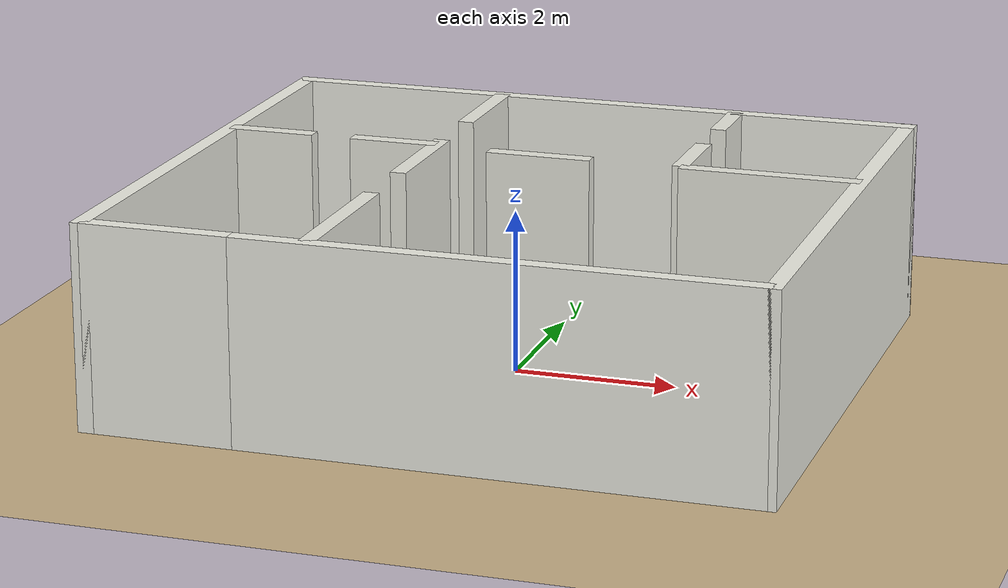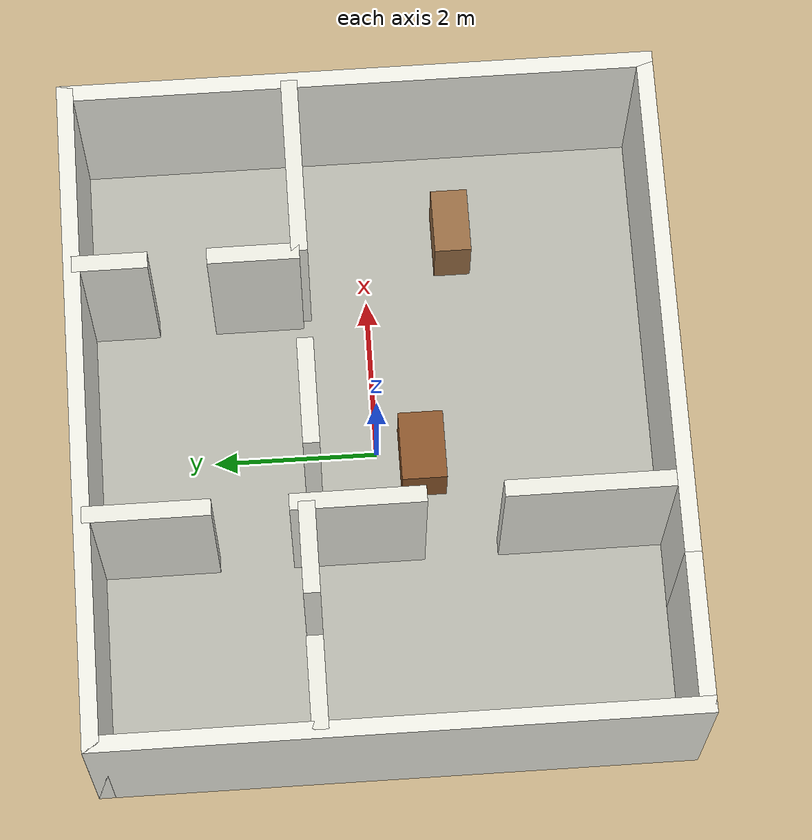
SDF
<?xml version="1.0"?>
<sdf version="1.8">
  <world name="reference_house">
    <physics name="1ms" type="ignored">
      <max_step_size>0.001</max_step_size>
      <real_time_factor>1.0</real_time_factor>
    </physics>
    <plugin filename="ignition-gazebo-physics-system" name="ignition::gazebo::systems::Physics"/>
    <plugin filename="ignition-gazebo-user-commands-system" name="ignition::gazebo::systems::UserCommands"/>
    <plugin filename="ignition-gazebo-scene-broadcaster-system" name="ignition::gazebo::systems::SceneBroadcaster"/>
    <plugin filename="ignition-gazebo-sensors-system" name="ignition::gazebo::systems::Sensors">
      <render_engine>ogre2</render_engine>
    </plugin>
    <gravity>0 0 -9.8</gravity>

    <light type="directional" name="sun">
      <pose>-3 -4 10 0 0 0</pose>
      <direction>0.35 0.25 -0.9</direction>
      <diffuse>0.9 0.9 0.85 1</diffuse>
      <specular>0.2 0.2 0.2 1</specular>
    </light>

    <model name="site_ground">
      <static>true</static>
      <link name="ground">
        <collision name="collision">
          <geometry><plane><normal>0 0 1</normal><size>16 15</size></plane></geometry>
        </collision>
        <visual name="visual">
          <geometry><plane><normal>0 0 1</normal><size>16 15</size></plane></geometry>
          <material><ambient>0.72 0.63 0.48 1</ambient><diffuse>0.78 0.69 0.53 1</diffuse></material>
        </visual>
      </link>
    </model>

    <model name="house_floor">
      <static>true</static>
      <pose>0 0 0.025 0 0 0</pose>
      <link name="floor">
        <collision name="collision"><geometry><box><size>8.0 7.0 0.05</size></box></geometry></collision>
        <visual name="visual">
          <geometry><box><size>8.0 7.0 0.05</size></box></geometry>
          <material><ambient>0.66 0.66 0.62 1</ambient><diffuse>0.72 0.72 0.68 1</diffuse></material>
        </visual>
      </link>
    </model>

    <!-- All wall poses are relative to the house center. The south wall has a 1.2 m front door. -->
    <model name="house_walls">
      <static>true</static>
      <link name="south_left">
        <pose>-3.10 -3.50 1.25 0 0 0</pose>
        <collision name="collision"><geometry><box><size>1.80 0.20 2.50</size></box></geometry></collision>
        <visual name="visual"><geometry><box><size>1.80 0.20 2.50</size></box></geometry><material><ambient>0.88 0.88 0.84 1</ambient><diffuse>0.94 0.94 0.90 1</diffuse></material></visual>
      </link>
      <link name="south_right">
        <pose>0.90 -3.50 1.25 0 0 0</pose>
        <collision name="collision"><geometry><box><size>6.20 0.20 2.50</size></box></geometry></collision>
        <visual name="visual"><geometry><box><size>6.20 0.20 2.50</size></box></geometry><material><ambient>0.88 0.88 0.84 1</ambient><diffuse>0.94 0.94 0.90 1</diffuse></material></visual>
      </link>
      <link name="north">
        <pose>0 3.50 1.25 0 0 0</pose>
        <collision name="collision"><geometry><box><size>8.20 0.20 2.50</size></box></geometry></collision>
        <visual name="visual"><geometry><box><size>8.20 0.20 2.50</size></box></geometry><material><ambient>0.88 0.88 0.84 1</ambient><diffuse>0.94 0.94 0.90 1</diffuse></material></visual>
      </link>
      <link name="west">
        <pose>-4.00 0 1.25 0 0 0</pose>
        <collision name="collision"><geometry><box><size>0.20 7.20 2.50</size></box></geometry></collision>
        <visual name="visual"><geometry><box><size>0.20 7.20 2.50</size></box></geometry><material><ambient>0.88 0.88 0.84 1</ambient><diffuse>0.94 0.94 0.90 1</diffuse></material></visual>
      </link>
      <link name="east">
        <pose>4.00 0 1.25 0 0 0</pose>
        <collision name="collision"><geometry><box><size>0.20 7.20 2.50</size></box></geometry></collision>
        <visual name="visual"><geometry><box><size>0.20 7.20 2.50</size></box></geometry><material><ambient>0.88 0.88 0.84 1</ambient><diffuse>0.94 0.94 0.90 1</diffuse></material></visual>
      </link>

      <!-- Left rooms and the central hall. Gaps between segments are doors. -->
      <link name="hall_left_south">
        <pose>-1.30 -2.45 1.25 0 0 0</pose>
        <collision name="collision"><geometry><box><size>0.20 2.10 2.50</size></box></geometry></collision>
        <visual name="visual"><geometry><box><size>0.20 2.10 2.50</size></box></geometry><material><ambient>0.86 0.86 0.82 1</ambient><diffuse>0.92 0.92 0.88 1</diffuse></material></visual>
      </link>
      <link name="hall_left_middle">
        <pose>-1.30 0.30 1.25 0 0 0</pose>
        <collision name="collision"><geometry><box><size>0.20 1.60 2.50</size></box></geometry></collision>
        <visual name="visual"><geometry><box><size>0.20 1.60 2.50</size></box></geometry><material><ambient>0.86 0.86 0.82 1</ambient><diffuse>0.92 0.92 0.88 1</diffuse></material></visual>
      </link>
      <link name="hall_left_north">
        <pose>-1.30 2.75 1.25 0 0 0</pose>
        <collision name="collision"><geometry><box><size>0.20 1.50 2.50</size></box></geometry></collision>
        <visual name="visual"><geometry><box><size>0.20 1.50 2.50</size></box></geometry><material><ambient>0.86 0.86 0.82 1</ambient><diffuse>0.92 0.92 0.88 1</diffuse></material></visual>
      </link>
      <link name="left_room_divider_west">
        <pose>-3.45 0.90 1.25 0 0 0</pose>
        <collision name="collision"><geometry><box><size>1.10 0.20 2.50</size></box></geometry></collision>
        <visual name="visual"><geometry><box><size>1.10 0.20 2.50</size></box></geometry><material><ambient>0.86 0.86 0.82 1</ambient><diffuse>0.92 0.92 0.88 1</diffuse></material></visual>
      </link>
      <link name="left_room_divider_east">
        <pose>-1.85 0.90 1.25 0 0 0</pose>
        <collision name="collision"><geometry><box><size>1.10 0.20 2.50</size></box></geometry></collision>
        <visual name="visual"><geometry><box><size>1.10 0.20 2.50</size></box></geometry><material><ambient>0.86 0.86 0.82 1</ambient><diffuse>0.92 0.92 0.88 1</diffuse></material></visual>
      </link>

      <!-- Right-hand rooms approximate the two stacked rooms visible in the reference. -->
      <link name="right_room_divider_left">
        <pose>0.05 0.80 1.25 0 0 0</pose>
        <collision name="collision"><geometry><box><size>1.30 0.20 2.50</size></box></geometry></collision>
        <visual name="visual"><geometry><box><size>1.30 0.20 2.50</size></box></geometry><material><ambient>0.86 0.86 0.82 1</ambient><diffuse>0.92 0.92 0.88 1</diffuse></material></visual>
      </link>
      <link name="right_room_divider_right">
        <pose>2.90 0.80 1.25 0 0 0</pose>
        <collision name="collision"><geometry><box><size>2.20 0.20 2.50</size></box></geometry></collision>
        <visual name="visual"><geometry><box><size>2.20 0.20 2.50</size></box></geometry><material><ambient>0.86 0.86 0.82 1</ambient><diffuse>0.92 0.92 0.88 1</diffuse></material></visual>
      </link>
      <link name="upper_right_vertical_south">
        <pose>1.80 1.35 1.25 0 0 0</pose>
        <collision name="collision"><geometry><box><size>0.20 1.10 2.50</size></box></geometry></collision>
        <visual name="visual"><geometry><box><size>0.20 1.10 2.50</size></box></geometry><material><ambient>0.86 0.86 0.82 1</ambient><diffuse>0.92 0.92 0.88 1</diffuse></material></visual>
      </link>
      <link name="upper_right_vertical_north">
        <pose>1.80 3.05 1.25 0 0 0</pose>
        <collision name="collision"><geometry><box><size>0.20 0.90 2.50</size></box></geometry></collision>
        <visual name="visual"><geometry><box><size>0.20 0.90 2.50</size></box></geometry><material><ambient>0.86 0.86 0.82 1</ambient><diffuse>0.92 0.92 0.88 1</diffuse></material></visual>
      </link>
    </model>

    <!-- Simple low furniture / lidar landmarks suggested by the reference image. -->
    <model name="center_table">
      <static>true</static><pose>-0.15 -0.55 0.38 0 0 0</pose>
      <link name="link">
        <collision name="collision"><geometry><box><size>0.85 0.55 0.75</size></box></geometry></collision>
        <visual name="visual"><geometry><box><size>0.85 0.55 0.75</size></box></geometry><material><ambient>0.42 0.25 0.12 1</ambient><diffuse>0.55 0.34 0.17 1</diffuse></material></visual>
      </link>
    </model>
    <model name="right_cabinet">
      <static>true</static><pose>2.70 -1.10 0.45 0 0 0</pose>
      <link name="link">
        <collision name="collision"><geometry><box><size>0.80 0.45 0.90</size></box></geometry></collision>
        <visual name="visual"><geometry><box><size>0.80 0.45 0.90</size></box></geometry><material><ambient>0.48 0.34 0.21 1</ambient><diffuse>0.60 0.43 0.27 1</diffuse></material></visual>
      </link>
    </model>
  </world>
</sdf>
